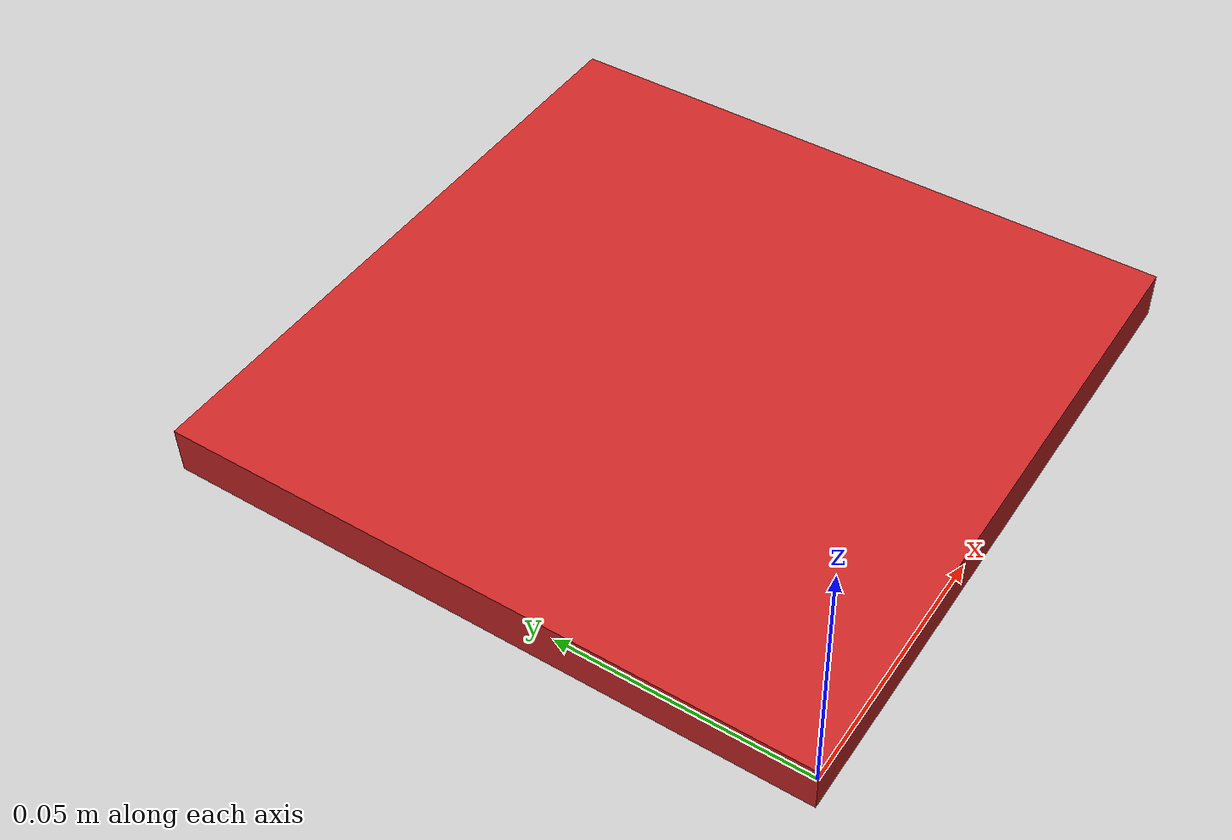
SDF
<?xml version="1.0" ?>
<sdf version="1.5">
  <model name="rettangolo_189">
    <static>true</static>
    <link name="link">
      <visual name="visual_top">
        <pose> 0 0 -0.008 0 0 0 </pose>
        <geometry>
          <mesh>
            <scale> 0.001 0.001 0.0000625</scale>
            <uri>model://rettangolo_189/meshes/rettangolo_189.STL</uri>
          </mesh>
        </geometry>
        <material>
          <lighting>1</lighting>
          <script>
            <uri>file://media/materials/scripts/gazebo.material</uri>
            <name>Gazebo/Red</name>
          </script>

          <shader type='vertex'>
            <normal_map>__default__</normal_map>
          </shader>
        </material>
      </visual>
    </link>
  </model>
</sdf>
